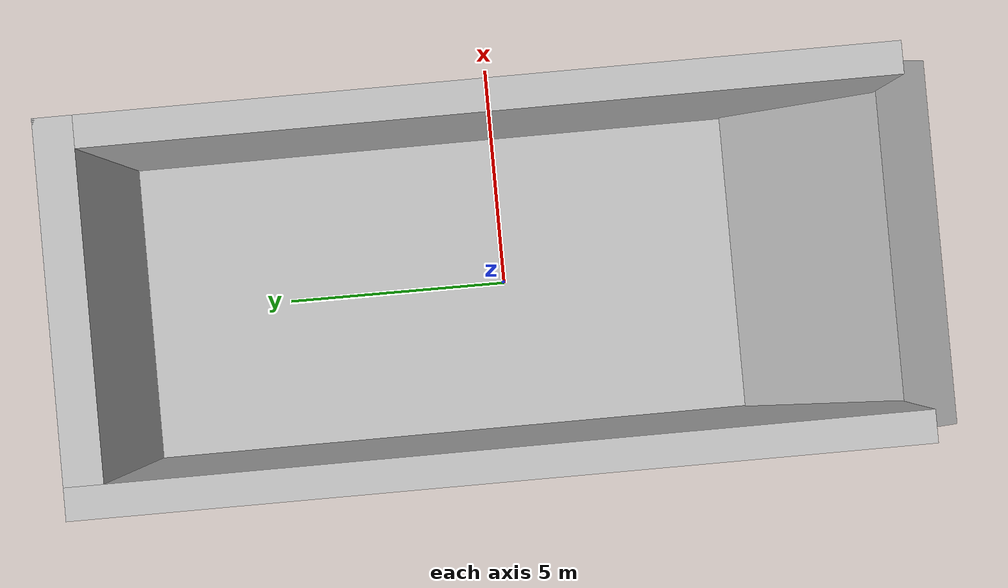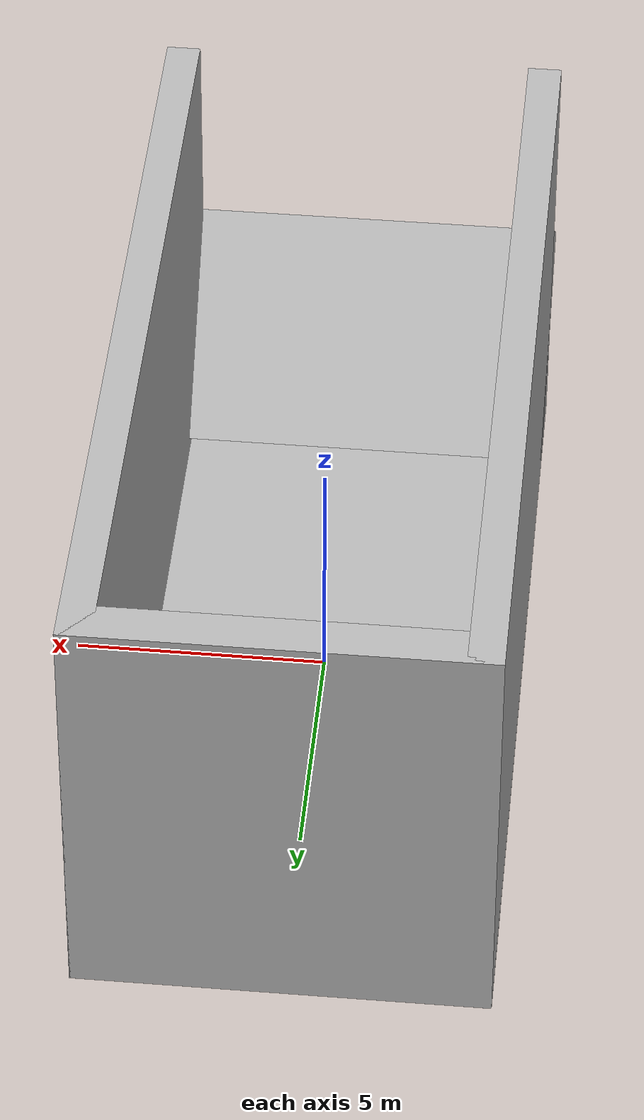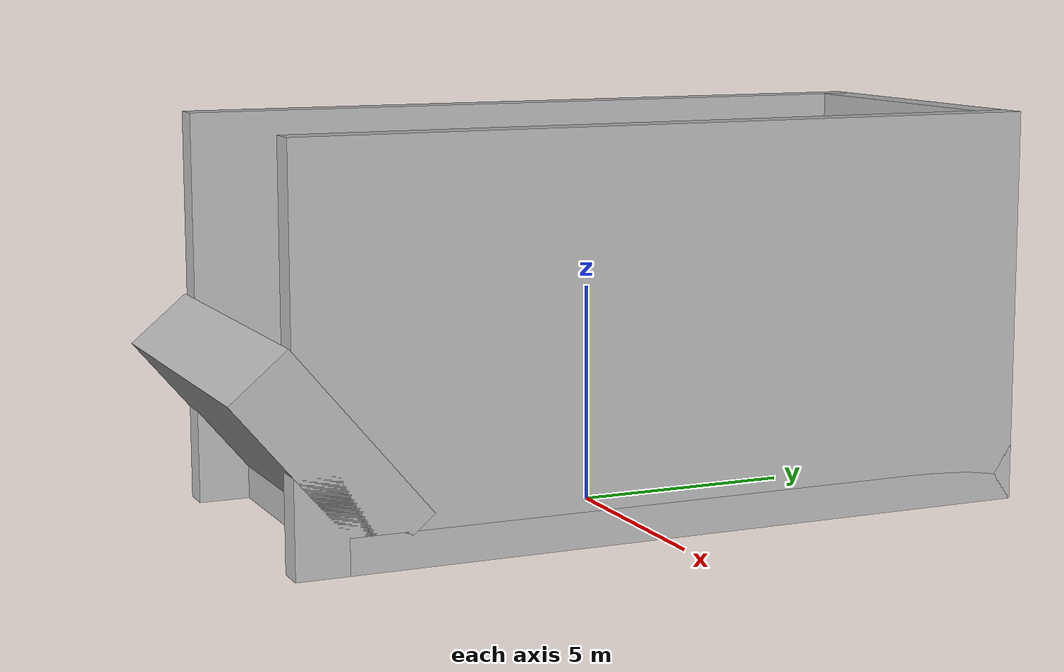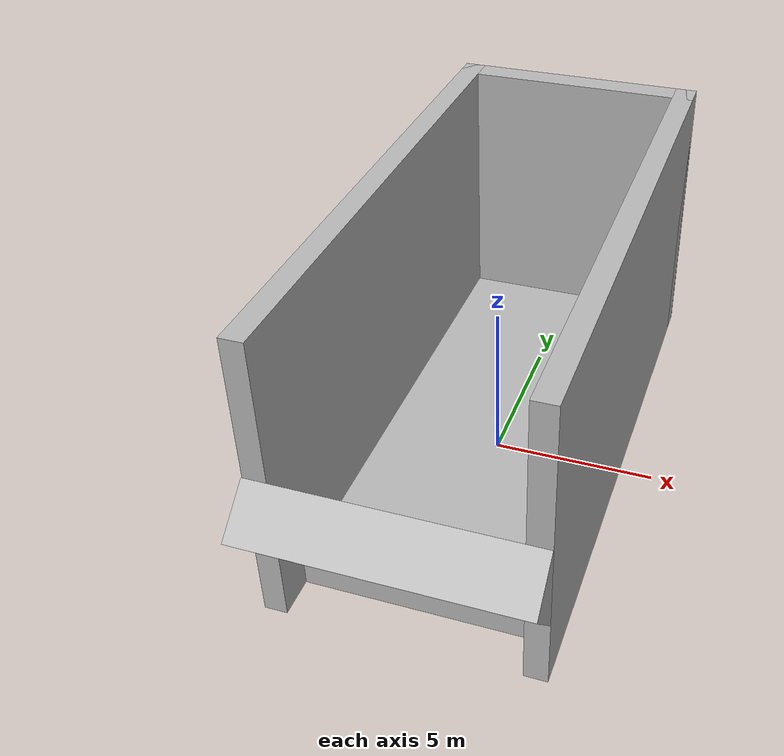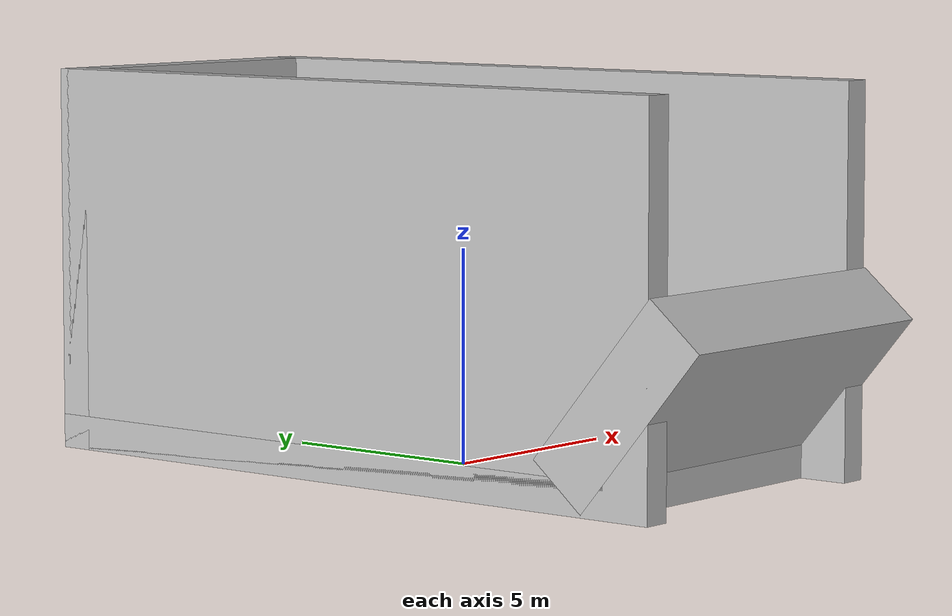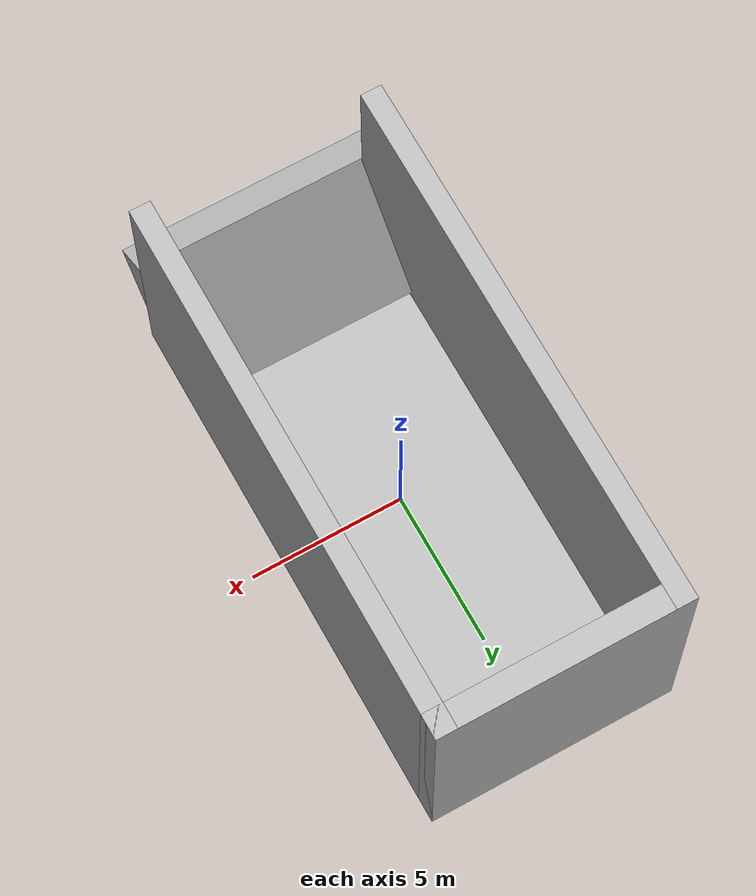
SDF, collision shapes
<?xml version="1.0" ?>
<sdf version="1.6">
  <model name="Picking_Bin">
    <link name="base_link">
      <visual name="base_visual">
        <geometry>
          <mesh>
            <uri>base_visual.glb</uri>
          </mesh>
        </geometry>
      </visual>
      <collision name="box002_elements5001_collider_box">
        <pose>-3.6647 0.347915 4.5 0.0 -0.0 0.0</pose>
        <geometry>
          <box>
            <size>0.670601 17.304169 9.0</size>
          </box>
        </geometry>
      </collision>
      <collision name="box002_elements5001_collider_box.001">
        <pose>3.6647 0.347915 4.5 0.0 -0.0 0.0</pose>
        <geometry>
          <box>
            <size>0.670601 17.304169 9.0</size>
          </box>
        </geometry>
      </collision>
      <collision name="box002_elements5001_collider_box.002">
        <pose>0.0 8.595875 4.5 0.0 -0.0 0.0</pose>
        <geometry>
          <box>
            <size>8.0 0.808252 9.0</size>
          </box>
        </geometry>
      </collision>
      <collision name="box002_elements5001_collider_box.003">
        <pose>0.0 0.933531 0.398687 0.0 -0.0 0.0</pose>
        <geometry>
          <box>
            <size>8.0 16.132938 0.797375</size>
          </box>
        </geometry>
      </collision>
      <collision name="box002_elements5001_collider_box.004">
        <pose>0.0 -7.444695 2.426299 0.698132 -0.0 0.0</pose>
        <geometry>
          <box>
            <size>8.0 1.66591 4.79594</size>
          </box>
        </geometry>
      </collision>
    </link>
  </model>
</sdf>
